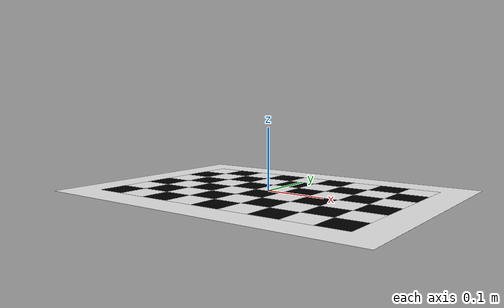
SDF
<?xml version="1.0"?>
<sdf version="1.4">
  <model name="checkerboard_9_6_0_05">
  <static>true</static>
  <link name="checkerboard_9_6_0_05_body">
      <visual name="checker_0_0">
        <pose>-0.2 -0.12500000000000003 0 0 0 0</pose>
        <geometry>
          <box>
            <size>0.05 0.05 0.0002</size>
          </box>
        </geometry>
        <material>
          <ambient>0 0 0 1</ambient>
          <diffuse>0 0 0 1</diffuse>
          <specular>0 0 0 1</specular>
          <emissive>0 0 0 1</emissive>
        </material>
      </visual>
      <visual name="checker_0_1">
        <pose>-0.2 -0.07500000000000001 0 0 0 0</pose>
        <geometry>
          <box>
            <size>0.05 0.05 0.0002</size>
          </box>
        </geometry>
        <material>
          <ambient>1 1 1 1</ambient>
          <diffuse>1 1 1 1</diffuse>
          <specular>1 1 1 1</specular>
          <emissive>1 1 1 1</emissive>
        </material>
      </visual>
      <visual name="checker_0_2">
        <pose>-0.2 -0.025000000000000022 0 0 0 0</pose>
        <geometry>
          <box>
            <size>0.05 0.05 0.0002</size>
          </box>
        </geometry>
        <material>
          <ambient>0 0 0 1</ambient>
          <diffuse>0 0 0 1</diffuse>
          <specular>0 0 0 1</specular>
          <emissive>0 0 0 1</emissive>
        </material>
      </visual>
      <visual name="checker_0_3">
        <pose>-0.2 0.024999999999999994 0 0 0 0</pose>
        <geometry>
          <box>
            <size>0.05 0.05 0.0002</size>
          </box>
        </geometry>
        <material>
          <ambient>1 1 1 1</ambient>
          <diffuse>1 1 1 1</diffuse>
          <specular>1 1 1 1</specular>
          <emissive>1 1 1 1</emissive>
        </material>
      </visual>
      <visual name="checker_0_4">
        <pose>-0.2 0.07499999999999998 0 0 0 0</pose>
        <geometry>
          <box>
            <size>0.05 0.05 0.0002</size>
          </box>
        </geometry>
        <material>
          <ambient>0 0 0 1</ambient>
          <diffuse>0 0 0 1</diffuse>
          <specular>0 0 0 1</specular>
          <emissive>0 0 0 1</emissive>
        </material>
      </visual>
      <visual name="checker_0_5">
        <pose>-0.2 0.125 0 0 0 0</pose>
        <geometry>
          <box>
            <size>0.05 0.05 0.0002</size>
          </box>
        </geometry>
        <material>
          <ambient>1 1 1 1</ambient>
          <diffuse>1 1 1 1</diffuse>
          <specular>1 1 1 1</specular>
          <emissive>1 1 1 1</emissive>
        </material>
      </visual>
      <visual name="checker_1_0">
        <pose>-0.15 -0.12500000000000003 0 0 0 0</pose>
        <geometry>
          <box>
            <size>0.05 0.05 0.0002</size>
          </box>
        </geometry>
        <material>
          <ambient>1 1 1 1</ambient>
          <diffuse>1 1 1 1</diffuse>
          <specular>1 1 1 1</specular>
          <emissive>1 1 1 1</emissive>
        </material>
      </visual>
      <visual name="checker_1_1">
        <pose>-0.15 -0.07500000000000001 0 0 0 0</pose>
        <geometry>
          <box>
            <size>0.05 0.05 0.0002</size>
          </box>
        </geometry>
        <material>
          <ambient>0 0 0 1</ambient>
          <diffuse>0 0 0 1</diffuse>
          <specular>0 0 0 1</specular>
          <emissive>0 0 0 1</emissive>
        </material>
      </visual>
      <visual name="checker_1_2">
        <pose>-0.15 -0.025000000000000022 0 0 0 0</pose>
        <geometry>
          <box>
            <size>0.05 0.05 0.0002</size>
          </box>
        </geometry>
        <material>
          <ambient>1 1 1 1</ambient>
          <diffuse>1 1 1 1</diffuse>
          <specular>1 1 1 1</specular>
          <emissive>1 1 1 1</emissive>
        </material>
      </visual>
      <visual name="checker_1_3">
        <pose>-0.15 0.024999999999999994 0 0 0 0</pose>
        <geometry>
          <box>
            <size>0.05 0.05 0.0002</size>
          </box>
        </geometry>
        <material>
          <ambient>0 0 0 1</ambient>
          <diffuse>0 0 0 1</diffuse>
          <specular>0 0 0 1</specular>
          <emissive>0 0 0 1</emissive>
        </material>
      </visual>
      <visual name="checker_1_4">
        <pose>-0.15 0.07499999999999998 0 0 0 0</pose>
        <geometry>
          <box>
            <size>0.05 0.05 0.0002</size>
          </box>
        </geometry>
        <material>
          <ambient>1 1 1 1</ambient>
          <diffuse>1 1 1 1</diffuse>
          <specular>1 1 1 1</specular>
          <emissive>1 1 1 1</emissive>
        </material>
      </visual>
      <visual name="checker_1_5">
        <pose>-0.15 0.125 0 0 0 0</pose>
        <geometry>
          <box>
            <size>0.05 0.05 0.0002</size>
          </box>
        </geometry>
        <material>
          <ambient>0 0 0 1</ambient>
          <diffuse>0 0 0 1</diffuse>
          <specular>0 0 0 1</specular>
          <emissive>0 0 0 1</emissive>
        </material>
      </visual>
      <visual name="checker_2_0">
        <pose>-0.1 -0.12500000000000003 0 0 0 0</pose>
        <geometry>
          <box>
            <size>0.05 0.05 0.0002</size>
          </box>
        </geometry>
        <material>
          <ambient>0 0 0 1</ambient>
          <diffuse>0 0 0 1</diffuse>
          <specular>0 0 0 1</specular>
          <emissive>0 0 0 1</emissive>
        </material>
      </visual>
      <visual name="checker_2_1">
        <pose>-0.1 -0.07500000000000001 0 0 0 0</pose>
        <geometry>
          <box>
            <size>0.05 0.05 0.0002</size>
          </box>
        </geometry>
        <material>
          <ambient>1 1 1 1</ambient>
          <diffuse>1 1 1 1</diffuse>
          <specular>1 1 1 1</specular>
          <emissive>1 1 1 1</emissive>
        </material>
      </visual>
      <visual name="checker_2_2">
        <pose>-0.1 -0.025000000000000022 0 0 0 0</pose>
        <geometry>
          <box>
            <size>0.05 0.05 0.0002</size>
          </box>
        </geometry>
        <material>
          <ambient>0 0 0 1</ambient>
          <diffuse>0 0 0 1</diffuse>
          <specular>0 0 0 1</specular>
          <emissive>0 0 0 1</emissive>
        </material>
      </visual>
      <visual name="checker_2_3">
        <pose>-0.1 0.024999999999999994 0 0 0 0</pose>
        <geometry>
          <box>
            <size>0.05 0.05 0.0002</size>
          </box>
        </geometry>
        <material>
          <ambient>1 1 1 1</ambient>
          <diffuse>1 1 1 1</diffuse>
          <specular>1 1 1 1</specular>
          <emissive>1 1 1 1</emissive>
        </material>
      </visual>
      <visual name="checker_2_4">
        <pose>-0.1 0.07499999999999998 0 0 0 0</pose>
        <geometry>
          <box>
            <size>0.05 0.05 0.0002</size>
          </box>
        </geometry>
        <material>
          <ambient>0 0 0 1</ambient>
          <diffuse>0 0 0 1</diffuse>
          <specular>0 0 0 1</specular>
          <emissive>0 0 0 1</emissive>
        </material>
      </visual>
      <visual name="checker_2_5">
        <pose>-0.1 0.125 0 0 0 0</pose>
        <geometry>
          <box>
            <size>0.05 0.05 0.0002</size>
          </box>
        </geometry>
        <material>
          <ambient>1 1 1 1</ambient>
          <diffuse>1 1 1 1</diffuse>
          <specular>1 1 1 1</specular>
          <emissive>1 1 1 1</emissive>
        </material>
      </visual>
      <visual name="checker_3_0">
        <pose>-0.04999999999999999 -0.12500000000000003 0 0 0 0</pose>
        <geometry>
          <box>
            <size>0.05 0.05 0.0002</size>
          </box>
        </geometry>
        <material>
          <ambient>1 1 1 1</ambient>
          <diffuse>1 1 1 1</diffuse>
          <specular>1 1 1 1</specular>
          <emissive>1 1 1 1</emissive>
        </material>
      </visual>
      <visual name="checker_3_1">
        <pose>-0.04999999999999999 -0.07500000000000001 0 0 0 0</pose>
        <geometry>
          <box>
            <size>0.05 0.05 0.0002</size>
          </box>
        </geometry>
        <material>
          <ambient>0 0 0 1</ambient>
          <diffuse>0 0 0 1</diffuse>
          <specular>0 0 0 1</specular>
          <emissive>0 0 0 1</emissive>
        </material>
      </visual>
      <visual name="checker_3_2">
        <pose>-0.04999999999999999 -0.025000000000000022 0 0 0 0</pose>
        <geometry>
          <box>
            <size>0.05 0.05 0.0002</size>
          </box>
        </geometry>
        <material>
          <ambient>1 1 1 1</ambient>
          <diffuse>1 1 1 1</diffuse>
          <specular>1 1 1 1</specular>
          <emissive>1 1 1 1</emissive>
        </material>
      </visual>
      <visual name="checker_3_3">
        <pose>-0.04999999999999999 0.024999999999999994 0 0 0 0</pose>
        <geometry>
          <box>
            <size>0.05 0.05 0.0002</size>
          </box>
        </geometry>
        <material>
          <ambient>0 0 0 1</ambient>
          <diffuse>0 0 0 1</diffuse>
          <specular>0 0 0 1</specular>
          <emissive>0 0 0 1</emissive>
        </material>
      </visual>
      <visual name="checker_3_4">
        <pose>-0.04999999999999999 0.07499999999999998 0 0 0 0</pose>
        <geometry>
          <box>
            <size>0.05 0.05 0.0002</size>
          </box>
        </geometry>
        <material>
          <ambient>1 1 1 1</ambient>
          <diffuse>1 1 1 1</diffuse>
          <specular>1 1 1 1</specular>
          <emissive>1 1 1 1</emissive>
        </material>
      </visual>
      <visual name="checker_3_5">
        <pose>-0.04999999999999999 0.125 0 0 0 0</pose>
        <geometry>
          <box>
            <size>0.05 0.05 0.0002</size>
          </box>
        </geometry>
        <material>
          <ambient>0 0 0 1</ambient>
          <diffuse>0 0 0 1</diffuse>
          <specular>0 0 0 1</specular>
          <emissive>0 0 0 1</emissive>
        </material>
      </visual>
      <visual name="checker_4_0">
        <pose>0.0 -0.12500000000000003 0 0 0 0</pose>
        <geometry>
          <box>
            <size>0.05 0.05 0.0002</size>
          </box>
        </geometry>
        <material>
          <ambient>0 0 0 1</ambient>
          <diffuse>0 0 0 1</diffuse>
          <specular>0 0 0 1</specular>
          <emissive>0 0 0 1</emissive>
        </material>
      </visual>
      <visual name="checker_4_1">
        <pose>0.0 -0.07500000000000001 0 0 0 0</pose>
        <geometry>
          <box>
            <size>0.05 0.05 0.0002</size>
          </box>
        </geometry>
        <material>
          <ambient>1 1 1 1</ambient>
          <diffuse>1 1 1 1</diffuse>
          <specular>1 1 1 1</specular>
          <emissive>1 1 1 1</emissive>
        </material>
      </visual>
      <visual name="checker_4_2">
        <pose>0.0 -0.025000000000000022 0 0 0 0</pose>
        <geometry>
          <box>
            <size>0.05 0.05 0.0002</size>
          </box>
        </geometry>
        <material>
          <ambient>0 0 0 1</ambient>
          <diffuse>0 0 0 1</diffuse>
          <specular>0 0 0 1</specular>
          <emissive>0 0 0 1</emissive>
        </material>
      </visual>
      <visual name="checker_4_3">
        <pose>0.0 0.024999999999999994 0 0 0 0</pose>
        <geometry>
          <box>
            <size>0.05 0.05 0.0002</size>
          </box>
        </geometry>
        <material>
          <ambient>1 1 1 1</ambient>
          <diffuse>1 1 1 1</diffuse>
          <specular>1 1 1 1</specular>
          <emissive>1 1 1 1</emissive>
        </material>
      </visual>
      <visual name="checker_4_4">
        <pose>0.0 0.07499999999999998 0 0 0 0</pose>
        <geometry>
          <box>
            <size>0.05 0.05 0.0002</size>
          </box>
        </geometry>
        <material>
          <ambient>0 0 0 1</ambient>
          <diffuse>0 0 0 1</diffuse>
          <specular>0 0 0 1</specular>
          <emissive>0 0 0 1</emissive>
        </material>
      </visual>
      <visual name="checker_4_5">
        <pose>0.0 0.125 0 0 0 0</pose>
        <geometry>
          <box>
            <size>0.05 0.05 0.0002</size>
          </box>
        </geometry>
        <material>
          <ambient>1 1 1 1</ambient>
          <diffuse>1 1 1 1</diffuse>
          <specular>1 1 1 1</specular>
          <emissive>1 1 1 1</emissive>
        </material>
      </visual>
      <visual name="checker_5_0">
        <pose>0.05000000000000002 -0.12500000000000003 0 0 0 0</pose>
        <geometry>
          <box>
            <size>0.05 0.05 0.0002</size>
          </box>
        </geometry>
        <material>
          <ambient>1 1 1 1</ambient>
          <diffuse>1 1 1 1</diffuse>
          <specular>1 1 1 1</specular>
          <emissive>1 1 1 1</emissive>
        </material>
      </visual>
      <visual name="checker_5_1">
        <pose>0.05000000000000002 -0.07500000000000001 0 0 0 0</pose>
        <geometry>
          <box>
            <size>0.05 0.05 0.0002</size>
          </box>
        </geometry>
        <material>
          <ambient>0 0 0 1</ambient>
          <diffuse>0 0 0 1</diffuse>
          <specular>0 0 0 1</specular>
          <emissive>0 0 0 1</emissive>
        </material>
      </visual>
      <visual name="checker_5_2">
        <pose>0.05000000000000002 -0.025000000000000022 0 0 0 0</pose>
        <geometry>
          <box>
            <size>0.05 0.05 0.0002</size>
          </box>
        </geometry>
        <material>
          <ambient>1 1 1 1</ambient>
          <diffuse>1 1 1 1</diffuse>
          <specular>1 1 1 1</specular>
          <emissive>1 1 1 1</emissive>
        </material>
      </visual>
      <visual name="checker_5_3">
        <pose>0.05000000000000002 0.024999999999999994 0 0 0 0</pose>
        <geometry>
          <box>
            <size>0.05 0.05 0.0002</size>
          </box>
        </geometry>
        <material>
          <ambient>0 0 0 1</ambient>
          <diffuse>0 0 0 1</diffuse>
          <specular>0 0 0 1</specular>
          <emissive>0 0 0 1</emissive>
        </material>
      </visual>
      <visual name="checker_5_4">
        <pose>0.05000000000000002 0.07499999999999998 0 0 0 0</pose>
        <geometry>
          <box>
            <size>0.05 0.05 0.0002</size>
          </box>
        </geometry>
        <material>
          <ambient>1 1 1 1</ambient>
          <diffuse>1 1 1 1</diffuse>
          <specular>1 1 1 1</specular>
          <emissive>1 1 1 1</emissive>
        </material>
      </visual>
      <visual name="checker_5_5">
        <pose>0.05000000000000002 0.125 0 0 0 0</pose>
        <geometry>
          <box>
            <size>0.05 0.05 0.0002</size>
          </box>
        </geometry>
        <material>
          <ambient>0 0 0 1</ambient>
          <diffuse>0 0 0 1</diffuse>
          <specular>0 0 0 1</specular>
          <emissive>0 0 0 1</emissive>
        </material>
      </visual>
      <visual name="checker_6_0">
        <pose>0.10000000000000006 -0.12500000000000003 0 0 0 0</pose>
        <geometry>
          <box>
            <size>0.05 0.05 0.0002</size>
          </box>
        </geometry>
        <material>
          <ambient>0 0 0 1</ambient>
          <diffuse>0 0 0 1</diffuse>
          <specular>0 0 0 1</specular>
          <emissive>0 0 0 1</emissive>
        </material>
      </visual>
      <visual name="checker_6_1">
        <pose>0.10000000000000006 -0.07500000000000001 0 0 0 0</pose>
        <geometry>
          <box>
            <size>0.05 0.05 0.0002</size>
          </box>
        </geometry>
        <material>
          <ambient>1 1 1 1</ambient>
          <diffuse>1 1 1 1</diffuse>
          <specular>1 1 1 1</specular>
          <emissive>1 1 1 1</emissive>
        </material>
      </visual>
      <visual name="checker_6_2">
        <pose>0.10000000000000006 -0.025000000000000022 0 0 0 0</pose>
        <geometry>
          <box>
            <size>0.05 0.05 0.0002</size>
          </box>
        </geometry>
        <material>
          <ambient>0 0 0 1</ambient>
          <diffuse>0 0 0 1</diffuse>
          <specular>0 0 0 1</specular>
          <emissive>0 0 0 1</emissive>
        </material>
      </visual>
      <visual name="checker_6_3">
        <pose>0.10000000000000006 0.024999999999999994 0 0 0 0</pose>
        <geometry>
          <box>
            <size>0.05 0.05 0.0002</size>
          </box>
        </geometry>
        <material>
          <ambient>1 1 1 1</ambient>
          <diffuse>1 1 1 1</diffuse>
          <specular>1 1 1 1</specular>
          <emissive>1 1 1 1</emissive>
        </material>
      </visual>
      <visual name="checker_6_4">
        <pose>0.10000000000000006 0.07499999999999998 0 0 0 0</pose>
        <geometry>
          <box>
            <size>0.05 0.05 0.0002</size>
          </box>
        </geometry>
        <material>
          <ambient>0 0 0 1</ambient>
          <diffuse>0 0 0 1</diffuse>
          <specular>0 0 0 1</specular>
          <emissive>0 0 0 1</emissive>
        </material>
      </visual>
      <visual name="checker_6_5">
        <pose>0.10000000000000006 0.125 0 0 0 0</pose>
        <geometry>
          <box>
            <size>0.05 0.05 0.0002</size>
          </box>
        </geometry>
        <material>
          <ambient>1 1 1 1</ambient>
          <diffuse>1 1 1 1</diffuse>
          <specular>1 1 1 1</specular>
          <emissive>1 1 1 1</emissive>
        </material>
      </visual>
      <visual name="checker_7_0">
        <pose>0.15000000000000005 -0.12500000000000003 0 0 0 0</pose>
        <geometry>
          <box>
            <size>0.05 0.05 0.0002</size>
          </box>
        </geometry>
        <material>
          <ambient>1 1 1 1</ambient>
          <diffuse>1 1 1 1</diffuse>
          <specular>1 1 1 1</specular>
          <emissive>1 1 1 1</emissive>
        </material>
      </visual>
      <visual name="checker_7_1">
        <pose>0.15000000000000005 -0.07500000000000001 0 0 0 0</pose>
        <geometry>
          <box>
            <size>0.05 0.05 0.0002</size>
          </box>
        </geometry>
        <material>
          <ambient>0 0 0 1</ambient>
          <diffuse>0 0 0 1</diffuse>
          <specular>0 0 0 1</specular>
          <emissive>0 0 0 1</emissive>
        </material>
      </visual>
      <visual name="checker_7_2">
        <pose>0.15000000000000005 -0.025000000000000022 0 0 0 0</pose>
        <geometry>
          <box>
            <size>0.05 0.05 0.0002</size>
          </box>
        </geometry>
        <material>
          <ambient>1 1 1 1</ambient>
          <diffuse>1 1 1 1</diffuse>
          <specular>1 1 1 1</specular>
          <emissive>1 1 1 1</emissive>
        </material>
      </visual>
      <visual name="checker_7_3">
        <pose>0.15000000000000005 0.024999999999999994 0 0 0 0</pose>
        <geometry>
          <box>
            <size>0.05 0.05 0.0002</size>
          </box>
        </geometry>
        <material>
          <ambient>0 0 0 1</ambient>
          <diffuse>0 0 0 1</diffuse>
          <specular>0 0 0 1</specular>
          <emissive>0 0 0 1</emissive>
        </material>
      </visual>
      <visual name="checker_7_4">
        <pose>0.15000000000000005 0.07499999999999998 0 0 0 0</pose>
        <geometry>
          <box>
            <size>0.05 0.05 0.0002</size>
          </box>
        </geometry>
        <material>
          <ambient>1 1 1 1</ambient>
          <diffuse>1 1 1 1</diffuse>
          <specular>1 1 1 1</specular>
          <emissive>1 1 1 1</emissive>
        </material>
      </visual>
      <visual name="checker_7_5">
        <pose>0.15000000000000005 0.125 0 0 0 0</pose>
        <geometry>
          <box>
            <size>0.05 0.05 0.0002</size>
          </box>
        </geometry>
        <material>
          <ambient>0 0 0 1</ambient>
          <diffuse>0 0 0 1</diffuse>
          <specular>0 0 0 1</specular>
          <emissive>0 0 0 1</emissive>
        </material>
      </visual>
      <visual name="checker_8_0">
        <pose>0.20000000000000004 -0.12500000000000003 0 0 0 0</pose>
        <geometry>
          <box>
            <size>0.05 0.05 0.0002</size>
          </box>
        </geometry>
        <material>
          <ambient>0 0 0 1</ambient>
          <diffuse>0 0 0 1</diffuse>
          <specular>0 0 0 1</specular>
          <emissive>0 0 0 1</emissive>
        </material>
      </visual>
      <visual name="checker_8_1">
        <pose>0.20000000000000004 -0.07500000000000001 0 0 0 0</pose>
        <geometry>
          <box>
            <size>0.05 0.05 0.0002</size>
          </box>
        </geometry>
        <material>
          <ambient>1 1 1 1</ambient>
          <diffuse>1 1 1 1</diffuse>
          <specular>1 1 1 1</specular>
          <emissive>1 1 1 1</emissive>
        </material>
      </visual>
      <visual name="checker_8_2">
        <pose>0.20000000000000004 -0.025000000000000022 0 0 0 0</pose>
        <geometry>
          <box>
            <size>0.05 0.05 0.0002</size>
          </box>
        </geometry>
        <material>
          <ambient>0 0 0 1</ambient>
          <diffuse>0 0 0 1</diffuse>
          <specular>0 0 0 1</specular>
          <emissive>0 0 0 1</emissive>
        </material>
      </visual>
      <visual name="checker_8_3">
        <pose>0.20000000000000004 0.024999999999999994 0 0 0 0</pose>
        <geometry>
          <box>
            <size>0.05 0.05 0.0002</size>
          </box>
        </geometry>
        <material>
          <ambient>1 1 1 1</ambient>
          <diffuse>1 1 1 1</diffuse>
          <specular>1 1 1 1</specular>
          <emissive>1 1 1 1</emissive>
        </material>
      </visual>
      <visual name="checker_8_4">
        <pose>0.20000000000000004 0.07499999999999998 0 0 0 0</pose>
        <geometry>
          <box>
            <size>0.05 0.05 0.0002</size>
          </box>
        </geometry>
        <material>
          <ambient>0 0 0 1</ambient>
          <diffuse>0 0 0 1</diffuse>
          <specular>0 0 0 1</specular>
          <emissive>0 0 0 1</emissive>
        </material>
      </visual>
      <visual name="checker_8_5">
        <pose>0.20000000000000004 0.125 0 0 0 0</pose>
        <geometry>
          <box>
            <size>0.05 0.05 0.0002</size>
          </box>
        </geometry>
        <material>
          <ambient>1 1 1 1</ambient>
          <diffuse>1 1 1 1</diffuse>
          <specular>1 1 1 1</specular>
          <emissive>1 1 1 1</emissive>
        </material>
      </visual>
      <visual name="checker_backdrop">
        <pose>0 0 0 0 0 0</pose>
        <geometry>
          <box>
            <size>0.55 0.4 0.0001</size>
          </box>
        </geometry>
        <material>
          <ambient>1 1 1 1</ambient>
          <diffuse>1 1 1 1</diffuse>
          <specular>1 1 1 1</specular>
          <emissive>1 1 1 1</emissive>
        </material>
      </visual>
    </link>
  </model>
</sdf>
